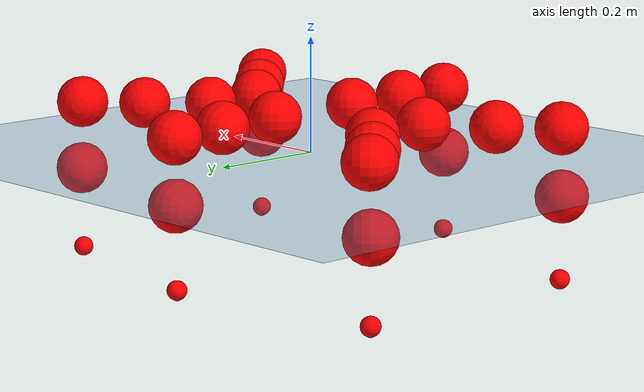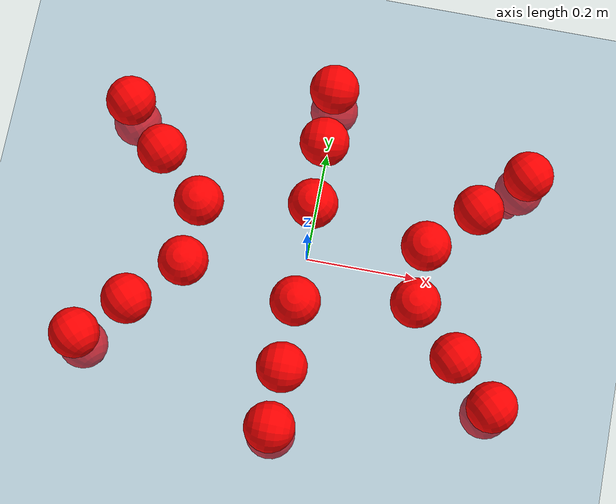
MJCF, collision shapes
<mujoco model="Golem">
  <compiler angle="radian" assetdir="assets" balanceinertia="true" inertiafromgeom="false"/>

  <option timestep="0.005" density="1.2" viscosity="2e-05"/>

  <size nkey="1"/>

  <visual>
    <quality shadowsize="8192"/>
    <map shadowclip="0.5"/>
  </visual>

  <default>
    <default class="/">
      <joint armature="0.01" damping="0.01" frictionloss="0.01"/>
      <geom contype="0" conaffinity="0" group="1" solref="-1000 -80"/>
      <site size="0.01 0.005 0.005" group="5"/>
      <general forcelimited="true" biastype="affine" gainprm="25" biasprm="0 -25 -0.5"/>
      <default class="visual">
        <geom type="mesh" group="2"/>
      </default>
      <default class="collision">
        <geom group="3"/>
      </default>
      <default class="foot">
        <geom size="0.01 0 0" condim="6" group="4" priority="1" solimp="0.015 1 0.01"/>
      </default>
      <default class="reward_collision_sphere">
        <geom group="5" rgba="1 0 0 1"/>
      </default>
    </default>
  </default>

  <asset>
    <texture type="skybox" colorspace="auto" name="//unnamed_texture_0" builtin="gradient" rgb1="0.95 0.95 0.95" rgb2="0.95 0.95 0.95" width="100" height="600"/>
    <texture type="2d" colorspace="auto" name="texplane" builtin="checker" rgb1="0.345 0.575 0.748" rgb2="0.345 0.575 0.748" markrgb="1 1 1" width="512" height="512"/>
    <material name="MatPlane" class="/" texture="texplane" texuniform="true" texrepeat="2 2" specular="0.9"/>
    <mesh name="body" class="/" file="body.stl" scale="0.001 0.001 0.001"/>
    <mesh name="coxa" class="/" file="coxa.stl" scale="0.001 0.001 0.001"/>
    <mesh name="femur" class="/" file="femur.stl" scale="0.001 0.001 0.001"/>
    <mesh name="tibia" class="/" file="tibia.stl" scale="0.001 0.001 0.001"/>
    <mesh name="tarsus" class="/" file="tarsus.stl" scale="0.001 0.001 0.001"/>
  </asset>

  <worldbody>
    <geom name="floor" class="/" size="100 100 0.125" type="plane" group="0" material="MatPlane"/>
    <light name="toplight_shadow" class="/" pos="0 0 5" dir="0.0990148 0.0990148 -0.990148" type="directional" ambient="0.04 0.04 0.04" diffuse="0.55 0.55 0.55" specular="0.12 0.12 0.12"/>
    <light name="toplight_fill" class="/" pos="0 0 5" dir="0.0990148 0.0990148 -0.990148" type="directional" castshadow="false" ambient="0.04 0.04 0.04" diffuse="0.3 0.3 0.3" specular="0.08 0.08 0.08"/>
    <body name="trunk" pos="-0.00271436 -0.0028083 0.000460785" quat="0.999999 -0.000400004 -0.000609625 -0.00106885">
      <inertial pos="0.00308455 -0.000381735 -0.000928361" quat="0.999902 0.00189316 -0.0128422 0.00517127" mass="5.6443" diaginertia="0.0423714 0.0102788 0.0154083"/>
      <joint name="//unnamed_joint_0" type="free"/>
      <geom name="//unnamed_geom_1" class="/" pos="0 0 0.0688974" quat="1 0 0 0" type="mesh" rgba="0.9 0.9 0.9 1" mesh="body"/>
      <site name="imu" class="/" pos="0.182414 0.0135964 0.107794" size="0.0113436"/>
      <camera name="track" class="/" pos="0 -1.99469 0" quat="0.707107 0.707107 0 0" mode="trackcom"/>
      <camera name="ego_camera" class="/" pos="0.172799 0 0.107652" quat="-0.5 -0.5 0.5 0.5"/>
      <body name="coxa_RR" pos="-0.238574 -0.0847098 0.0702673" quat="0.382576 0.000610649 0.000680957 -0.923924">
        <inertial pos="-0.000278175 -4.48901e-05 0.0022345" quat="1 2.32583e-05 -6.20776e-06 -1.21949e-06" mass="0.297038" diaginertia="0.040736 0.00991221 0.0147744"/>
        <joint name="coxa_joint_RR" class="/" pos="0 0 0" axis="-0.00314474 -0.000660079 -0.999995" range="-3.13323 3.0886" armature="0.0112635" damping="0.00503373" frictionloss="0.0118286"/>
        <geom name="//unnamed_geom_2" class="/" type="mesh" rgba="0.2 0.2 0.2 1" mesh="coxa"/>
        <geom name="//unnamed_geom_3" class="reward_collision_sphere" size="0.0453745" pos="-0.0398767 0 0"/>
        <body name="femur_RR" pos="0.0809316 -4.36697e-06 -0.00359776" quat="0.499672 -0.500273 0.49991 0.500146">
          <inertial pos="-0.000446986 0.000109593 0.00046329" quat="1 -0.000325783 -0.000179272 0.000464636" mass="0.2846" diaginertia="0.0407254 0.00972535 0.014194"/>
          <joint name="femur_joint_RR" class="/" pos="0 0 0" axis="0.00339887 -0.0122078 -0.99992" range="-3.17061 3.12849" armature="0.0120297" damping="0.0214113" frictionloss="0.0114824"/>
          <geom name="//unnamed_geom_4" class="/" type="mesh" rgba="0.9 0.9 0.9 1" mesh="femur"/>
          <geom name="//unnamed_geom_5" class="reward_collision_sphere" size="0.0453745"/>
          <body name="tibia_RR" pos="0.00128785 -0.109009 -2.37725e-05" quat="0.000326331 1 0.000228942 -0.000191411">
            <inertial pos="-0.000203787 0.000281805 -0.00170381" quat="0.999901 -0.00899851 0.00971193 0.00472054" mass="0.297889" diaginertia="0.0407467 0.0100619 0.0143882"/>
            <joint name="tibia_joint_RR" class="/" pos="0 0 0" axis="0.0112862 -0.00119139 0.999936" range="-3.19569 3.13469" armature="0.00986614" damping="0" frictionloss="0.0100523"/>
            <geom name="//unnamed_geom_6" class="/" type="mesh" rgba="0.2 0.2 0.2 1" mesh="tibia"/>
            <geom name="//unnamed_geom_7" class="reward_collision_sphere" size="0.0453745"/>
            <body name="tarsus_RR" pos="0.116275 0.0027229 -0.000849714" quat="1 3.4809e-05 -0.000112177 -3.49674e-05">
              <inertial pos="0.078255 5.08545e-05 -0.000913761" quat="0.499734 0.500141 0.500449 0.499676" mass="0.279591" diaginertia="0.0413861 0.00943038 0.0142293"/>
              <joint name="tarsus_joint_RR" class="/" pos="0 0 0" axis="-0.000595417 -0.000838044 0.999999" range="-3.1198 3.08422" armature="0.00989442" damping="0.0425569" frictionloss="0.0122267"/>
              <geom name="//unnamed_geom_8" class="/" type="mesh" rgba="0.9 0.9 0.9 1" mesh="tarsus"/>
              <geom name="foot_1" class="foot" size="0.0112217" pos="0.148873 0 0" quat="0 -0.707107 0 0.707107"/>
              <geom name="//unnamed_geom_10" class="reward_collision_sphere" size="0.0453745"/>
              <geom name="//unnamed_geom_11" class="reward_collision_sphere" size="0.0170154" pos="0.142891 0 0"/>
              <site name="foot_1" class="foot" pos="0.148873 0 0" quat="0 -0.707107 0 0.707107" size="0.0113436"/>
            </body>
          </body>
        </body>
      </body>
      <body name="coxa_RM" pos="-0.000511831 -0.131005 0.0735115" quat="0.707124 -3.85348e-05 -0.000112123 -0.70709">
        <inertial pos="-0.00198582 -0.00041692 -0.00108228" quat="0.999928 0.00869713 0.00742832 -0.00358609" mass="0.291508" diaginertia="0.040078 0.00985338 0.0138753"/>
        <joint name="coxa_joint_RM" class="/" pos="0 0 0" axis="-0.00533162 0.00339059 -0.99998" stiffness="0.00590252" range="-3.15154 3.1493" armature="0.0112613" damping="0.0125969" frictionloss="0.00987639"/>
        <geom name="//unnamed_geom_12" class="/" type="mesh" rgba="0.2 0.2 0.2 1" mesh="coxa"/>
        <geom name="//unnamed_geom_13" class="reward_collision_sphere" size="0.0453745" pos="-0.0398767 0 0"/>
        <body name="femur_RM" pos="0.0800556 -0.000568664 0.00089012" quat="0.499837 -0.501075 0.499967 0.499119">
          <inertial pos="0.000912988 0.000117042 -9.12267e-06" quat="0.999998 -0.000773537 -0.00111718 -0.0015642" mass="0.286818" diaginertia="0.0420289 0.00957411 0.0143863"/>
          <joint name="femur_joint_RM" class="/" pos="0 0 0" axis="-0.00892131 -0.00418432 -0.999951" range="-3.15596 3.12883" armature="0.0125534" damping="0.021704" frictionloss="0.0117441"/>
          <geom name="//unnamed_geom_14" class="/" type="mesh" rgba="0.9 0.9 0.9 1" mesh="femur"/>
          <geom name="//unnamed_geom_15" class="reward_collision_sphere" size="0.0453745"/>
          <body name="tibia_RM" pos="-0.00135273 -0.106367 -0.00111267" quat="-0.000234916 1 -8.63262e-05 -4.49111e-05">
            <inertial pos="-0.000265808 0.00265148 -0.00277444" quat="1 0.000123909 1.60947e-05 -0.000308823" mass="0.30695" diaginertia="0.043296 0.00970831 0.0145884"/>
            <joint name="tibia_joint_RM" class="/" pos="0 0 0" axis="0.00844317 0.00899714 0.999924" range="-3.15953 3.09052" armature="0.0117125" damping="0.011885" frictionloss="0.0100207"/>
            <geom name="//unnamed_geom_16" class="/" type="mesh" rgba="0.2 0.2 0.2 1" mesh="tibia"/>
            <geom name="//unnamed_geom_17" class="reward_collision_sphere" size="0.0453745"/>
            <body name="tarsus_RM" pos="0.118032 0.00166412 0.000740014" quat="1 -0.000439705 -0.000386122 -0.000167993">
              <inertial pos="0.0795307 -0.00127346 0.00101189" quat="0.497948 0.498794 0.500206 0.503037" mass="0.295906" diaginertia="0.0416947 0.0100824 0.0152495"/>
              <joint name="tarsus_joint_RM" class="/" pos="0 0 0" axis="0.00197237 -0.0116828 0.99993" stiffness="0.00194669" range="-3.1594 3.13346" armature="0.0112066" damping="0.00616137" frictionloss="0.0108005"/>
              <geom name="//unnamed_geom_18" class="/" type="mesh" rgba="0.9 0.9 0.9 1" mesh="tarsus"/>
              <geom name="foot_2" class="foot" size="0.0109363" pos="0.148873 0 0" quat="0 -0.707107 0 0.707107"/>
              <geom name="//unnamed_geom_20" class="reward_collision_sphere" size="0.0453745"/>
              <geom name="//unnamed_geom_21" class="reward_collision_sphere" size="0.0170154" pos="0.142891 0 0"/>
              <site name="foot_2" class="foot" pos="0.148873 0 0" quat="0 -0.707107 0 0.707107" size="0.0113436"/>
            </body>
          </body>
        </body>
      </body>
      <body name="coxa_RF" pos="0.237086 -0.081658 0.0678182" quat="0.923978 0.00018451 0.000374818 -0.382446">
        <inertial pos="0.000185293 0.000508526 -0.000969298" quat="0.999957 -0.00282451 -0.00501536 0.0072199" mass="0.297316" diaginertia="0.0442397 0.0100437 0.0148059"/>
        <joint name="coxa_joint_RF" class="/" pos="0 0 0" axis="-0.000680176 -0.000516047 -1" range="-3.19021 3.13336" armature="0.0125835" damping="0.0115625" frictionloss="0.0102003"/>
        <geom name="//unnamed_geom_22" class="/" type="mesh" rgba="0.2 0.2 0.2 1" mesh="coxa"/>
        <geom name="//unnamed_geom_23" class="reward_collision_sphere" size="0.0453745" pos="-0.0398767 0 0"/>
        <body name="femur_RF" pos="0.0793071 0.00140509 0.00100742" quat="0.500357 -0.499255 0.500033 0.500355">
          <inertial pos="0.00283515 0.000409116 0.00279956" quat="0.99999 0.00276844 -0.000167966 -0.0034987" mass="0.283976" diaginertia="0.0431862 0.00969301 0.01465"/>
          <joint name="femur_joint_RF" class="/" pos="0 0 0" axis="0.0131161 0.00596628 -0.999896" stiffness="0.00154028" range="-3.13601 3.08416" armature="0.0116112" damping="0.0117703" frictionloss="0.0106043"/>
          <geom name="//unnamed_geom_24" class="/" type="mesh" rgba="0.9 0.9 0.9 1" mesh="femur"/>
          <geom name="//unnamed_geom_25" class="reward_collision_sphere" size="0.0453745"/>
          <body name="tibia_RF" pos="-0.0028908 -0.106284 0.00168404" quat="0.000492718 1 -6.9444e-05 8.52238e-05">
            <inertial pos="-0.00072958 -0.00201662 0.00118185" quat="0.999901 -0.00550409 -0.00141983 -0.0128805" mass="0.301097" diaginertia="0.0413962 0.00975308 0.0143506"/>
            <joint name="tibia_joint_RF" class="/" pos="0 0 0" axis="-0.00110505 0.00219306 0.999997" range="-3.15878 3.08747" armature="0.0117152" damping="0.0245347" frictionloss="0.010771"/>
            <geom name="//unnamed_geom_26" class="/" type="mesh" rgba="0.2 0.2 0.2 1" mesh="tibia"/>
            <geom name="//unnamed_geom_27" class="reward_collision_sphere" size="0.0453745"/>
            <body name="tarsus_RF" pos="0.116822 0.00123393 -0.00129519" quat="0.999999 0.000335938 0.00111264 -0.000763921">
              <inertial pos="0.080959 2.05031e-05 0.0013016" quat="0.498431 0.497077 0.50205 0.502422" mass="0.298023" diaginertia="0.0425876 0.00981614 0.0140007"/>
              <joint name="tarsus_joint_RF" class="/" pos="0 0 0" axis="-0.00579885 0.00213161 0.999981" range="-3.19693 3.14628" armature="0.0126109" damping="0.00464609" frictionloss="0.0112034"/>
              <geom name="//unnamed_geom_28" class="/" type="mesh" rgba="0.9 0.9 0.9 1" mesh="tarsus"/>
              <geom name="foot_3" class="foot" size="0.0117377" pos="0.148873 0 0" quat="0 -0.707107 0 0.707107"/>
              <geom name="//unnamed_geom_30" class="reward_collision_sphere" size="0.0453745"/>
              <geom name="//unnamed_geom_31" class="reward_collision_sphere" size="0.0170154" pos="0.142891 0 0"/>
              <site name="foot_3" class="foot" pos="0.148873 0 0" quat="0 -0.707107 0 0.707107" size="0.0113436"/>
            </body>
          </body>
        </body>
      </body>
      <body name="coxa_LR" pos="-0.234384 0.08596 0.0655601" quat="0.382505 0.000132302 -0.000617742 0.923953">
        <inertial pos="0.000228037 0.000983622 1.92034e-05" quat="0.999936 -0.0069487 0.0057636 -0.00687873" mass="0.287871" diaginertia="0.0417937 0.0099343 0.0147339"/>
        <joint name="coxa_joint_LR" class="/" pos="0 0 0" axis="-0.00195084 0.00150082 -0.999997" stiffness="0.0115863" range="-3.17286 3.13923" armature="0.0126835" damping="0.0100163" frictionloss="0.0113154"/>
        <geom name="//unnamed_geom_32" class="/" type="mesh" rgba="0.2 0.2 0.2 1" mesh="coxa"/>
        <geom name="//unnamed_geom_33" class="reward_collision_sphere" size="0.0453745" pos="-0.0398767 0 0"/>
        <body name="femur_LR" pos="0.0794759 0.00203712 -0.00019296" quat="0.500233 -0.499586 0.500022 0.500159">
          <inertial pos="0.000984919 0.000806134 0.000598148" quat="0.999901 0.0128395 0.0039153 0.00422383" mass="0.282196" diaginertia="0.0387805 0.00948693 0.0137974"/>
          <joint name="femur_joint_LR" class="/" pos="0 0 0" axis="0.00836372 0.00259395 0.999962" range="-3.16281 3.09333" armature="0.0127394" damping="0.000564617" frictionloss="0.0103595"/>
          <geom name="//unnamed_geom_34" class="/" type="mesh" rgba="0.9 0.9 0.9 1" mesh="femur"/>
          <geom name="//unnamed_geom_35" class="reward_collision_sphere" size="0.0453745"/>
          <body name="tibia_LR" pos="-0.000741627 -0.108471 -0.00277371" quat="0.00116236 0.999999 1.93284e-05 0.00015818">
            <inertial pos="0.00277012 0.000695576 0.000148757" quat="0.999943 0.00591324 -0.00794915 -0.00405823" mass="0.28623" diaginertia="0.0419155 0.0102394 0.0146431"/>
            <joint name="tibia_joint_LR" class="/" pos="0 0 0" axis="-0.00613949 -0.00458056 -0.999971" stiffness="0.00795641" range="-3.13993 3.12927" armature="0.012517" damping="0.0130362" frictionloss="0.0129389"/>
            <geom name="//unnamed_geom_36" class="/" type="mesh" rgba="0.2 0.2 0.2 1" mesh="tibia"/>
            <geom name="//unnamed_geom_37" class="reward_collision_sphere" size="0.0453745"/>
            <body name="tarsus_LR" pos="0.119381 -0.000940101 -0.00236291" quat="0.999999 0.000113901 0.000985558 0.000815391">
              <inertial pos="0.0774494 -0.00256956 -0.00217166" quat="0.493111 0.510912 0.496374 0.499424" mass="0.29669" diaginertia="0.0418797 0.00996808 0.0145803"/>
              <joint name="tarsus_joint_LR" class="/" pos="0 0 0" axis="-0.000601234 -0.00071992 -1" stiffness="0.00805948" range="-3.14509 3.1279" armature="0.0112821" damping="0.0293742" frictionloss="0.0101285"/>
              <geom name="//unnamed_geom_38" class="/" type="mesh" rgba="0.9 0.9 0.9 1" mesh="tarsus"/>
              <geom name="foot_4" class="foot" size="0.0118613" pos="0.148873 0 0" quat="0.707107 0 -0.707107 0"/>
              <geom name="//unnamed_geom_40" class="reward_collision_sphere" size="0.0453745"/>
              <geom name="//unnamed_geom_41" class="reward_collision_sphere" size="0.0170154" pos="0.142891 0 0"/>
              <site name="foot_4" class="foot" pos="0.148873 0 0" quat="0.707107 0 -0.707107 0" size="0.0113436"/>
            </body>
          </body>
        </body>
      </body>
      <body name="coxa_LM" pos="-0.00290142 0.129635 0.0717363" quat="0.706992 -0.00019166 -0.000278565 0.707222">
        <inertial pos="0.00195088 -0.00127827 -0.00241785" quat="0.999953 0.00129637 -0.00838413 -0.00464355" mass="0.293236" diaginertia="0.0418115 0.0101969 0.0150824"/>
        <joint name="coxa_joint_LM" class="/" pos="0 0 0" axis="-0.0018413 0.00105677 -0.999998" range="-3.12961 3.14093" armature="0.0110979" damping="0" frictionloss="0.0124394"/>
        <geom name="//unnamed_geom_42" class="/" type="mesh" rgba="0.2 0.2 0.2 1" mesh="coxa"/>
        <geom name="//unnamed_geom_43" class="reward_collision_sphere" size="0.0453745" pos="-0.0398767 0 0"/>
        <body name="femur_LM" pos="0.0781813 0.00135441 -0.00257246" quat="0.498975 -0.500151 0.500618 0.500255">
          <inertial pos="-0.00196151 0.000199304 -0.00120412" quat="0.999901 0.0030816 -0.0136693 0.000956222" mass="0.30661" diaginertia="0.0423812 0.010125 0.0148848"/>
          <joint name="femur_joint_LM" class="/" pos="0 0 0" axis="-0.00453058 0.00187357 0.999988" range="-3.08449 3.16985" armature="0.0130084" damping="0" frictionloss="0.0111741"/>
          <geom name="//unnamed_geom_44" class="/" type="mesh" rgba="0.9 0.9 0.9 1" mesh="femur"/>
          <geom name="//unnamed_geom_45" class="reward_collision_sphere" size="0.0453745"/>
          <body name="tibia_LM" pos="0.00315281 -0.102888 0.00048527" quat="-0.000577228 1 7.93172e-05 0.000302736">
            <inertial pos="0.000462147 -0.000140178 -0.000481442" quat="1 0.000139181 -8.44261e-05 3.36227e-05" mass="0.295505" diaginertia="0.0406151 0.00981861 0.0150917"/>
            <joint name="tibia_joint_LM" class="/" pos="0 0 0" axis="0.00222096 -0.0131585 -0.999911" range="-3.1071 3.14326" armature="0.0128779" damping="0.00925696" frictionloss="0.01003"/>
            <geom name="//unnamed_geom_46" class="/" type="mesh" rgba="0.2 0.2 0.2 1" mesh="tibia"/>
            <geom name="//unnamed_geom_47" class="reward_collision_sphere" size="0.0453745"/>
            <body name="tarsus_LM" pos="0.114488 -0.0019434 0.00193932" quat="0.999999 0.000626211 0.00129364 0.000176156">
              <inertial pos="0.0820521 0.00212992 0.00279992" quat="0.498372 0.501177 0.49851 0.501932" mass="0.293327" diaginertia="0.0411888 0.00978991 0.0140423"/>
              <joint name="tarsus_joint_LM" class="/" pos="0 0 0" axis="0.00926587 0.000561515 -0.999957" stiffness="0.0059525" range="-3.11985 3.13114" armature="0.0112955" damping="0.0177495" frictionloss="0.011609"/>
              <geom name="//unnamed_geom_48" class="/" type="mesh" rgba="0.9 0.9 0.9 1" mesh="tarsus"/>
              <geom name="foot_5" class="foot" size="0.0116296" pos="0.148873 0 0" quat="0.707107 0 -0.707107 0"/>
              <geom name="//unnamed_geom_50" class="reward_collision_sphere" size="0.0453745"/>
              <geom name="//unnamed_geom_51" class="reward_collision_sphere" size="0.0170154" pos="0.142891 0 0"/>
              <site name="foot_5" class="foot" pos="0.148873 0 0" quat="0.707107 0 -0.707107 0" size="0.0113436"/>
            </body>
          </body>
        </body>
      </body>
      <body name="coxa_LF" pos="0.238229 0.0804742 0.0658211" quat="0.923855 -0.000122945 -0.000592689 0.382743">
        <inertial pos="-0.000622754 0.00017441 0.000760428" quat="0.999987 -0.000934959 -0.0048223 0.000966862" mass="0.28418" diaginertia="0.0400534 0.0101483 0.0144069"/>
        <joint name="coxa_joint_LF" class="/" pos="0 0 0" axis="-0.00397261 0.016004 -0.999864" range="-3.12951 3.12146" armature="0.0108849" damping="0.0252114" frictionloss="0.0123036"/>
        <geom name="//unnamed_geom_52" class="/" type="mesh" rgba="0.2 0.2 0.2 1" mesh="coxa"/>
        <geom name="//unnamed_geom_53" class="reward_collision_sphere" size="0.0453745" pos="-0.0398767 0 0"/>
        <body name="femur_LF" pos="0.0769014 0.00141568 -0.0010257" quat="0.500698 -0.49968 0.499347 0.500275">
          <inertial pos="0.0026764 -0.0010084 -0.000371261" quat="0.999971 0.00292953 0.00277694 -0.00638459" mass="0.289656" diaginertia="0.0400627 0.00979515 0.0146152"/>
          <joint name="femur_joint_LF" class="/" pos="0 0 0" axis="-0.00279017 0.00924572 0.999953" stiffness="0.000306336" range="-3.13447 3.13076" armature="0.0113201" damping="0" frictionloss="0.0120142"/>
          <geom name="//unnamed_geom_54" class="/" type="mesh" rgba="0.9 0.9 0.9 1" mesh="femur"/>
          <geom name="//unnamed_geom_55" class="reward_collision_sphere" size="0.0453745"/>
          <body name="tibia_LF" pos="-0.000769706 -0.110465 0.000246852" quat="3.28433e-06 1 0.000589154 -0.000326149">
            <inertial pos="0.0011783 -0.000750546 0.000283561" quat="1 -2.21462e-05 -0.000275698 -0.000110126" mass="0.294006" diaginertia="0.0398922 0.00984582 0.0140401"/>
            <joint name="tibia_joint_LF" class="/" pos="0 0 0" axis="0.00679128 0.00768831 -0.999947" range="-3.17621 3.11997" armature="0.0128569" damping="0" frictionloss="0.0119519"/>
            <geom name="//unnamed_geom_56" class="/" type="mesh" rgba="0.2 0.2 0.2 1" mesh="tibia"/>
            <geom name="//unnamed_geom_57" class="reward_collision_sphere" size="0.0453745"/>
            <body name="tarsus_LF" pos="0.118696 0.002591 -0.00332513" quat="1 -3.16172e-05 0.000302091 0.000143918">
              <inertial pos="0.0779261 0.000466218 0.00070481" quat="0.498346 0.499427 0.498838 0.503374" mass="0.289803" diaginertia="0.042265 0.0100601 0.014118"/>
              <joint name="tarsus_joint_LF" class="/" pos="0 0 0" axis="0.000588725 0.000783471 -1" stiffness="0.0273065" range="-3.09641 3.10163" armature="0.0126019" damping="0.0266979" frictionloss="0.0129203"/>
              <geom name="//unnamed_geom_58" class="/" type="mesh" rgba="0.9 0.9 0.9 1" mesh="tarsus"/>
              <geom name="foot_6" class="foot" size="0.010554" pos="0.148873 0 0" quat="0.707107 0 -0.707107 0"/>
              <geom name="//unnamed_geom_60" class="reward_collision_sphere" size="0.0453745"/>
              <geom name="//unnamed_geom_61" class="reward_collision_sphere" size="0.0170154" pos="0.142891 0 0"/>
              <site name="foot_6" class="foot" pos="0.148873 0 0" quat="0.707107 0 -0.707107 0" size="0.0113436"/>
            </body>
          </body>
        </body>
      </body>
    </body>
  </worldbody>

  <contact>
    <pair class="/" geom1="floor" geom2="foot_1" name="//unnamed_contact_0"/>
    <pair class="/" geom1="floor" geom2="foot_2" name="//unnamed_contact_1"/>
    <pair class="/" geom1="floor" geom2="foot_3" name="//unnamed_contact_2"/>
    <pair class="/" geom1="floor" geom2="foot_4" name="//unnamed_contact_3"/>
    <pair class="/" geom1="floor" geom2="foot_5" name="//unnamed_contact_4"/>
    <pair class="/" geom1="floor" geom2="foot_6" name="//unnamed_contact_5"/>
  </contact>

  <actuator>
    <general name="coxa_joint_RR" class="/" joint="coxa_joint_RR" forcerange="-8.09007 8.09007" gainprm="27.2297" biasprm="0 -27.2297 -0.539999"/>
    <general name="femur_joint_RR" class="/" joint="femur_joint_RR" forcerange="-9.12228 9.12228" gainprm="27.2297" biasprm="0 -27.2297 -0.539999"/>
    <general name="tibia_joint_RR" class="/" joint="tibia_joint_RR" forcerange="-8.32497 8.32497" gainprm="27.2297" biasprm="0 -27.2297 -0.539999"/>
    <general name="tarsus_joint_RR" class="/" joint="tarsus_joint_RR" forcerange="-9.15669 9.15669" gainprm="27.2297" biasprm="0 -27.2297 -0.539999"/>
    <general name="coxa_joint_RM" class="/" joint="coxa_joint_RM" forcerange="-8.32539 8.32539" gainprm="27.2297" biasprm="0 -27.2297 -0.539999"/>
    <general name="femur_joint_RM" class="/" joint="femur_joint_RM" forcerange="-8.30169 8.30169" gainprm="27.2297" biasprm="0 -27.2297 -0.539999"/>
    <general name="tibia_joint_RM" class="/" joint="tibia_joint_RM" forcerange="-7.88874 7.88874" gainprm="27.2297" biasprm="0 -27.2297 -0.539999"/>
    <general name="tarsus_joint_RM" class="/" joint="tarsus_joint_RM" forcerange="-8.3256 8.3256" gainprm="27.2297" biasprm="0 -27.2297 -0.539999"/>
    <general name="coxa_joint_RF" class="/" joint="coxa_joint_RF" forcerange="-8.5462 8.5462" gainprm="27.2297" biasprm="0 -27.2297 -0.539999"/>
    <general name="femur_joint_RF" class="/" joint="femur_joint_RF" forcerange="-8.54865 8.54865" gainprm="27.2297" biasprm="0 -27.2297 -0.539999"/>
    <general name="tibia_joint_RF" class="/" joint="tibia_joint_RF" forcerange="-8.53573 8.53573" gainprm="27.2297" biasprm="0 -27.2297 -0.539999"/>
    <general name="tarsus_joint_RF" class="/" joint="tarsus_joint_RF" forcerange="-9.10225 9.10225" gainprm="27.2297" biasprm="0 -27.2297 -0.539999"/>
    <general name="coxa_joint_LR" class="/" joint="coxa_joint_LR" forcerange="-8.2046 8.2046" gainprm="27.2297" biasprm="0 -27.2297 -0.539999"/>
    <general name="femur_joint_LR" class="/" joint="femur_joint_LR" forcerange="-7.66991 7.66991" gainprm="27.2297" biasprm="0 -27.2297 -0.539999"/>
    <general name="tibia_joint_LR" class="/" joint="tibia_joint_LR" forcerange="-7.46691 7.46691" gainprm="27.2297" biasprm="0 -27.2297 -0.539999"/>
    <general name="tarsus_joint_LR" class="/" joint="tarsus_joint_LR" forcerange="-7.45043 7.45043" gainprm="27.2297" biasprm="0 -27.2297 -0.539999"/>
    <general name="coxa_joint_LM" class="/" joint="coxa_joint_LM" forcerange="-7.46627 7.46627" gainprm="27.2297" biasprm="0 -27.2297 -0.539999"/>
    <general name="femur_joint_LM" class="/" joint="femur_joint_LM" forcerange="-7.79268 7.79268" gainprm="27.2297" biasprm="0 -27.2297 -0.539999"/>
    <general name="tibia_joint_LM" class="/" joint="tibia_joint_LM" forcerange="-7.518 7.518" gainprm="27.2297" biasprm="0 -27.2297 -0.539999"/>
    <general name="tarsus_joint_LM" class="/" joint="tarsus_joint_LM" forcerange="-8.04343 8.04343" gainprm="27.2297" biasprm="0 -27.2297 -0.539999"/>
    <general name="coxa_joint_LF" class="/" joint="coxa_joint_LF" forcerange="-7.5829 7.5829" gainprm="27.2297" biasprm="0 -27.2297 -0.539999"/>
    <general name="femur_joint_LF" class="/" joint="femur_joint_LF" forcerange="-8.68745 8.68745" gainprm="27.2297" biasprm="0 -27.2297 -0.539999"/>
    <general name="tibia_joint_LF" class="/" joint="tibia_joint_LF" forcerange="-9.10122 9.10122" gainprm="27.2297" biasprm="0 -27.2297 -0.539999"/>
    <general name="tarsus_joint_LF" class="/" joint="tarsus_joint_LF" forcerange="-7.48018 7.48018" gainprm="27.2297" biasprm="0 -27.2297 -0.539999"/>
  </actuator>

  <sensor>
    <gyro site="imu" name="imu_angular_velocity"/>
    <velocimeter site="imu" name="imu_linear_velocity"/>
    <framelinvel objtype="site" objname="foot_1" name="foot_1_global_linear_velocity"/>
    <framelinvel objtype="site" objname="foot_2" name="foot_2_global_linear_velocity"/>
    <framelinvel objtype="site" objname="foot_3" name="foot_3_global_linear_velocity"/>
    <framelinvel objtype="site" objname="foot_4" name="foot_4_global_linear_velocity"/>
    <framelinvel objtype="site" objname="foot_5" name="foot_5_global_linear_velocity"/>
    <framelinvel objtype="site" objname="foot_6" name="foot_6_global_linear_velocity"/>
  </sensor>

  <keyframe>
    <key name="home" qpos="0 0 0.1457 1 0 0 0 0 0 0 0 0 0 0 0 0 0 0 0 0 0 0 0 0 0 0 0 0 0 0 0"/>
  </keyframe>
</mujoco>
